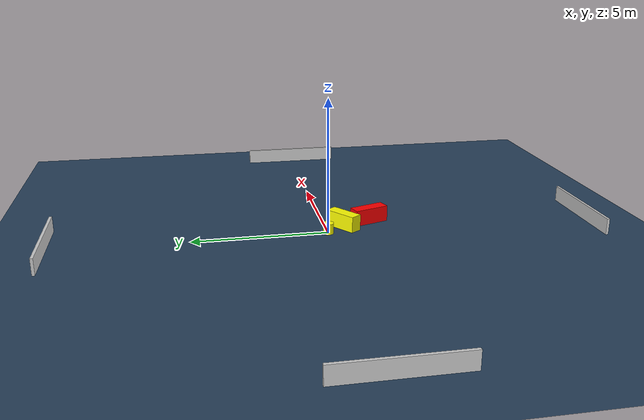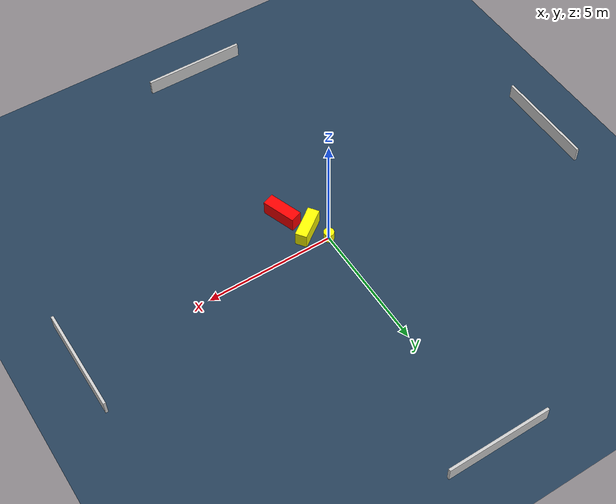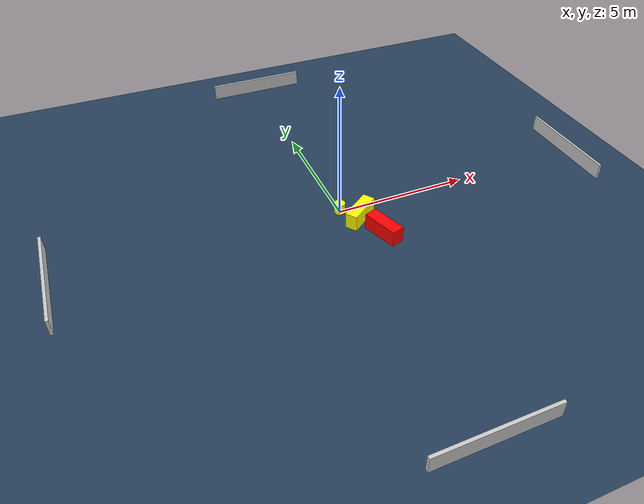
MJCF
<?xml version="1.0" ?>
<mujoco model="generated_environment">
  <option timestep="0.01" integrator="RK4" cone="elliptic"/>
  <default>
    <geom density="1"/>
  </default>
  <asset>
    <texture builtin="gradient" height="3072" name="skybox" rgb1="0.3 0.5 0.7" rgb2="0 0 0" type="skybox" width="512"/>
    <texture builtin="checker" height="300" name="groundplane" rgb1="0.2 0.3 0.4" rgb2="0.1 0.2 0.3" type="2d" width="300"/>
    <material name="groundplane" reflectance="0.2" texrepeat="5 5" texture="groundplane"/>
  </asset>
  <worldbody>
    <light dir="0 0 -1" directional="true" pos="0 0 1.5"/>
    <geom condim="3" friction="0.5 0.005 0.001" material="groundplane" name="floor" pos="0 0 0" size="0 0 0.05" type="plane"/>
    <body name="walls">
      <geom name="wall_1" condim="4" pos="-10.0 0.0 0.3" rgba="0.800000011920929 0.800000011920929 0.800000011920929 1.0" size="0.05 2.0 0.3" type="box"/>
      <geom name="wall_2" condim="4" pos="10.0 0.0 0.3" rgba="0.800000011920929 0.800000011920929 0.800000011920929 1.0" size="0.05 2.0 0.3" type="box"/>
      <geom name="wall_3" condim="4" pos="0.0 -10.0 0.3" rgba="0.800000011920929 0.800000011920929 0.800000011920929 1.0" size="2.0 0.05 0.3" type="box"/>
      <geom name="wall_4" condim="4" pos="0.0 10.0 0.3" rgba="0.800000011920929 0.800000011920929 0.800000011920929 1.0" size="2.0 0.05 0.3" type="box"/>
    </body>
    <body name="robot">
      <joint name="joint_x" type="slide" pos="0 0 0" axis="1 0 0"/>
      <joint name="joint_y" type="slide" pos="0 0 0" axis="0 1 0"/>
      <geom name="robot" type="cylinder" pos="0.0 0.0 0.2" size="0.2 0.2 0.0" mass="5.0" friction="1.0 0.005 0.0001" condim="4" rgba="1.0 1.0 0.0 1.0"/>
    </body>
    <body name="obstacle_1_movable">
      <geom name="obstacle_1_movable" condim="4" pos="0.5009486894876136 -0.6665980957526624 0.3" euler="0 0 306.1876214607439" friction="0.0 0.005 0.001" rgba="1.0 1.0 0.0 1.0" size="0.2242606164915744 0.6437939961969956 0.3" type="box" mass="0.1"/>
      <joint type="free"/>
    </body>
    <body name="obstacle_2_static">
      <geom name="obstacle_2_static" condim="4" pos="0.9160348291853305 -1.7380348438991358 0.3" euler="0 0 109.16170499253218" friction="0.0 0.005 0.001" rgba="1.0 0.0 0.0 1.0" size="0.6776393138077709 0.23731724214821656 0.3" type="box"/>
    </body>
  </worldbody>
  <actuator>
    <motor name="actuator_x" joint="joint_x" gear="1" ctrlrange="-1 1"/>
    <motor name="actuator_y" joint="joint_y" gear="1" ctrlrange="-1 1"/>
  </actuator>
</mujoco>
